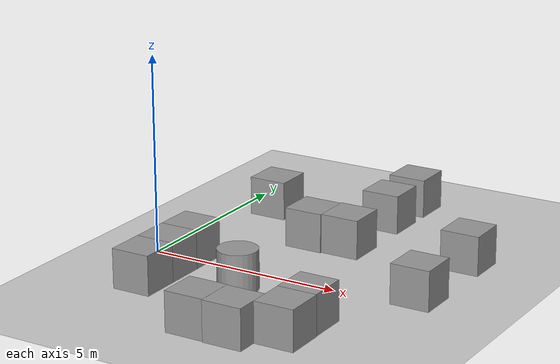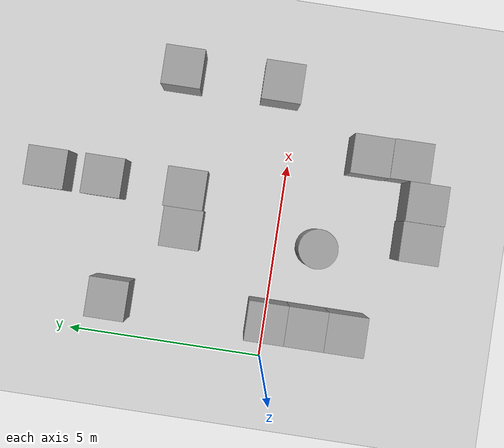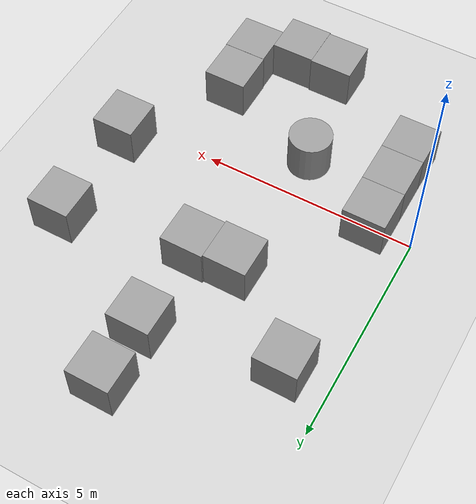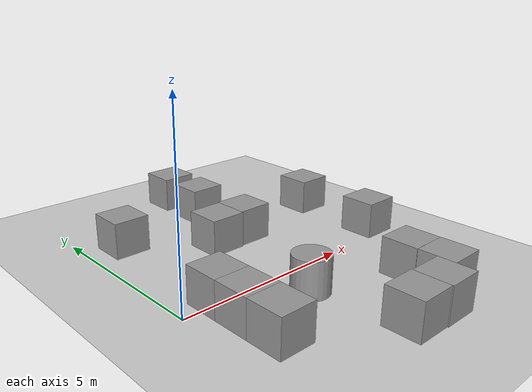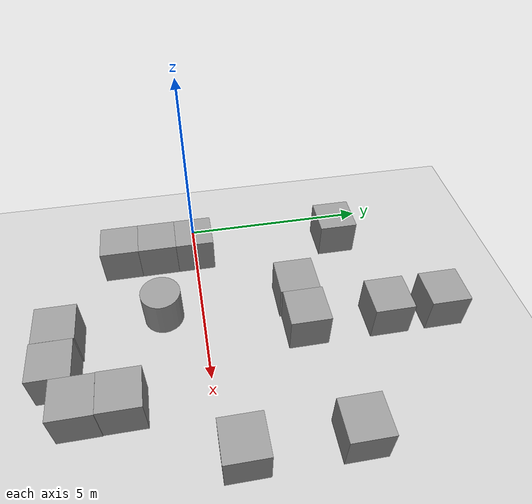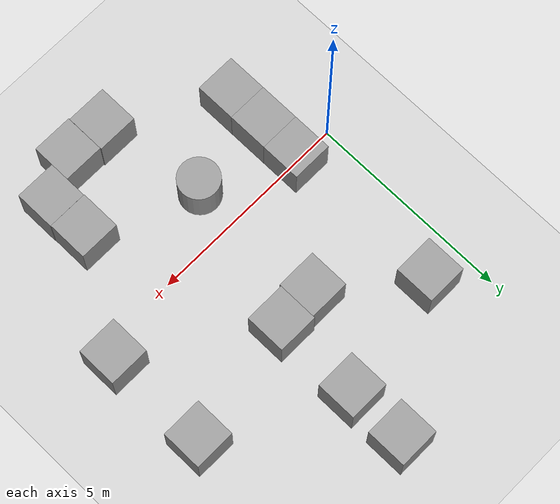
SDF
<sdf version="1.4">
 <world name="default">
  <light name="sun" type="directional">
   <pose>0 0 10 0 -0 0</pose>
   <diffuse>0.8 0.8 0.8 1</diffuse>
   <specular>0.2 0.2 0.2 1</specular>
   <attenuation>
    <range>1000</range>
    <constant>0.9</constant>
    <linear>0.01</linear>
    <quadratic>0.001</quadratic>
   </attenuation>
   <direction>-0.5 0.1 -0.9</direction>
  </light>
  <model name="ground_plane">
   <static>1</static>
   <link name="link">
    <collision name="collision">
     <geometry><plane><normal>0 0 1</normal><size>100 100</size></plane></geometry>
     <surface><friction><ode><mu>100</mu><mu2>50</mu2></ode></friction></surface>
    </collision>
    <visual name="visual">
     <cast_shadows>0</cast_shadows>
     <geometry><plane><normal>0 0 1</normal><size>100 100</size></plane></geometry>
     <material>
      <script><uri>file://media/materials/scripts/gazebo.material</uri><name>Gazebo/Grey</name></script>
     </material>
    </visual>
    <velocity_decay><linear>0</linear><angular>0</angular></velocity_decay>
   </link>
  </model>
  <physics type="ode">
   <max_step_size>0.001</max_step_size>
   <real_time_factor>1</real_time_factor>
   <real_time_update_rate>1000</real_time_update_rate>
   <gravity>0 0 -9.8</gravity>
  </physics>
  <scene><ambient>0.4 0.4 0.4 1</ambient><background>0.7 0.7 0.7 1</background><shadows>1</shadows></scene>
  <spherical_coordinates>
   <surface_model>EARTH_WGS84</surface_model>
   <latitude_deg>0</latitude_deg>
   <longitude_deg>0</longitude_deg>
   <elevation>0</elevation>
   <heading_deg>0</heading_deg>
  </spherical_coordinates>
  <model name="unit_box_1">
   <pose>1 -1 0.5 0 -0 -2e-06</pose>
   <link name="link">
    <inertial>
     <mass>1</mass>
     <inertia><ixx>1</ixx><ixy>0</ixy><ixz>0</ixz><iyy>1</iyy><iyz>0</iyz><izz>1</izz></inertia>
    </inertial>
    <collision name="collision"><geometry><box><size>1 1 1</size></box></geometry></collision>
    <visual name="visual">
     <geometry><box><size>1 1 1</size></box></geometry>
     <material>
      <script><uri>file://media/materials/scripts/gazebo.material</uri><name>Gazebo/Grey</name></script>
     </material>
    </visual>
    <velocity_decay><linear>0</linear><angular>0</angular></velocity_decay>
   </link>
   <static>0</static>
  </model>
  <model name="unit_box_2">
   <pose>1 -2 0.5 -0 -0 -0</pose>
   <link name="link">
    <inertial>
     <mass>1</mass>
     <inertia><ixx>1</ixx><ixy>0</ixy><ixz>0</ixz><iyy>1</iyy><iyz>0</iyz><izz>1</izz></inertia>
    </inertial>
    <collision name="collision"><geometry><box><size>1 1 1</size></box></geometry></collision>
    <visual name="visual">
     <geometry><box><size>1 1 1</size></box></geometry>
     <material>
      <script><uri>file://media/materials/scripts/gazebo.material</uri><name>Gazebo/Grey</name></script>
     </material>
    </visual>
    <velocity_decay><linear>0</linear><angular>0</angular></velocity_decay>
   </link>
   <static>0</static>
  </model>
  <model name="unit_box_3">
   <pose>3.51342 -3.49772 0.5 0 -0 0.000892</pose>
   <link name="link">
    <inertial>
     <mass>1</mass>
     <inertia><ixx>1</ixx><ixy>0</ixy><ixz>0</ixz><iyy>1</iyy><iyz>0</iyz><izz>1</izz></inertia>
    </inertial>
    <collision name="collision"><geometry><box><size>1 1 1</size></box></geometry></collision>
    <visual name="visual">
     <geometry><box><size>1 1 1</size></box></geometry>
     <material>
      <script><uri>file://media/materials/scripts/gazebo.material</uri><name>Gazebo/Grey</name></script>
     </material>
    </visual>
    <velocity_decay><linear>0</linear><angular>0</angular></velocity_decay>
   </link>
   <static>0</static>
  </model>
  <model name="unit_cylinder_2">
   <pose>3 -1 0.499998 1e-06 -0 0</pose>
   <link name="link">
    <inertial>
     <mass>1</mass>
     <inertia><ixx>1</ixx><ixy>0</ixy><ixz>0</ixz><iyy>1</iyy><iyz>0</iyz><izz>1</izz></inertia>
    </inertial>
    <collision name="collision">
     <geometry><cylinder><radius>0.5</radius><length>1</length></cylinder></geometry>
    </collision>
    <visual name="visual">
     <geometry><cylinder><radius>0.5</radius><length>1</length></cylinder></geometry>
     <material>
      <script><uri>file://media/materials/scripts/gazebo.material</uri><name>Gazebo/Grey</name></script>
     </material>
    </visual>
    <velocity_decay><linear>0</linear><angular>0</angular></velocity_decay>
   </link>
   <static>0</static>
  </model>
  <model name="unit_box_4">
   <pose>4.51429 -3.52273 0.5 0 -0 0.002583</pose>
   <link name="link">
    <inertial>
     <mass>1</mass>
     <inertia><ixx>1</ixx><ixy>0</ixy><ixz>0</ixz><iyy>1</iyy><iyz>0</iyz><izz>1</izz></inertia>
    </inertial>
    <collision name="collision"><geometry><box><size>1 1 1</size></box></geometry></collision>
    <visual name="visual">
     <geometry><box><size>1 1 1</size></box></geometry>
     <material>
      <script><uri>file://media/materials/scripts/gazebo.material</uri><name>Gazebo/Grey</name></script>
     </material>
    </visual>
    <velocity_decay><linear>0</linear><angular>0</angular></velocity_decay>
   </link>
   <static>0</static>
  </model>
  <model name="unit_box_5">
   <pose>5.51299 -2.99965 0.5 0 -0 0.002485</pose>
   <link name="link">
    <inertial>
     <mass>1</mass>
     <inertia><ixx>1</ixx><ixy>0</ixy><ixz>0</ixz><iyy>1</iyy><iyz>0</iyz><izz>1</izz></inertia>
    </inertial>
    <collision name="collision"><geometry><box><size>1 1 1</size></box></geometry></collision>
    <visual name="visual">
     <geometry><box><size>1 1 1</size></box></geometry>
     <material>
      <script><uri>file://media/materials/scripts/gazebo.material</uri><name>Gazebo/Grey</name></script>
     </material>
    </visual>
    <velocity_decay><linear>0</linear><angular>0</angular></velocity_decay>
   </link>
   <static>0</static>
  </model>
  <model name="unit_box_6">
   <pose>5.49986 -1.99875 0.5 0 -0 0.000619</pose>
   <link name="link">
    <inertial>
     <mass>1</mass>
     <inertia><ixx>1</ixx><ixy>0</ixy><ixz>0</ixz><iyy>1</iyy><iyz>0</iyz><izz>1</izz></inertia>
    </inertial>
    <collision name="collision"><geometry><box><size>1 1 1</size></box></geometry></collision>
    <visual name="visual">
     <geometry><box><size>1 1 1</size></box></geometry>
     <material>
      <script><uri>file://media/materials/scripts/gazebo.material</uri><name>Gazebo/Grey</name></script>
     </material>
    </visual>
    <velocity_decay><linear>0</linear><angular>0</angular></velocity_decay>
   </link>
   <static>0</static>
  </model>
  <model name="unit_box_7">
   <pose>7 0.460649 0.5 0 -0 0</pose>
   <link name="link">
    <inertial>
     <mass>1</mass>
     <inertia><ixx>1</ixx><ixy>0</ixy><ixz>0</ixz><iyy>1</iyy><iyz>0</iyz><izz>1</izz></inertia>
    </inertial>
    <collision name="collision"><geometry><box><size>1 1 1</size></box></geometry></collision>
    <visual name="visual">
     <geometry><box><size>1 1 1</size></box></geometry>
     <material>
      <script><uri>file://media/materials/scripts/gazebo.material</uri><name>Gazebo/Grey</name></script>
     </material>
    </visual>
    <velocity_decay><linear>0</linear><angular>0</angular></velocity_decay>
   </link>
   <static>0</static>
  </model>
  <model name="unit_box_8">
   <pose>1 0 0.5 0 -0 -2e-06</pose>
   <link name="link">
    <inertial>
     <mass>1</mass>
     <inertia><ixx>1</ixx><ixy>0</ixy><ixz>0</ixz><iyy>1</iyy><iyz>0</iyz><izz>1</izz></inertia>
    </inertial>
    <collision name="collision"><geometry><box><size>1 1 1</size></box></geometry></collision>
    <visual name="visual">
     <geometry><box><size>1 1 1</size></box></geometry>
     <material>
      <script><uri>file://media/materials/scripts/gazebo.material</uri><name>Gazebo/Grey</name></script>
     </material>
    </visual>
    <velocity_decay><linear>0</linear><angular>0</angular></velocity_decay>
   </link>
   <static>0</static>
  </model>
  <model name="unit_box_9">
   <pose>4 2.48737 0.5 0 -0 0</pose>
   <link name="link">
    <inertial>
     <mass>1</mass>
     <inertia><ixx>1</ixx><ixy>0</ixy><ixz>0</ixz><iyy>1</iyy><iyz>0</iyz><izz>1</izz></inertia>
    </inertial>
    <collision name="collision"><geometry><box><size>1 1 1</size></box></geometry></collision>
    <visual name="visual">
     <geometry><box><size>1 1 1</size></box></geometry>
     <material>
      <script><uri>file://media/materials/scripts/gazebo.material</uri><name>Gazebo/Grey</name></script>
     </material>
    </visual>
    <velocity_decay><linear>0</linear><angular>0</angular></velocity_decay>
   </link>
   <static>0</static>
  </model>
  <model name="unit_box_10">
   <pose>3 2.44308 0.5 -0 -0 -0</pose>
   <link name="link">
    <inertial>
     <mass>1</mass>
     <inertia><ixx>1</ixx><ixy>0</ixy><ixz>0</ixz><iyy>1</iyy><iyz>0</iyz><izz>1</izz></inertia>
    </inertial>
    <collision name="collision"><geometry><box><size>1 1 1</size></box></geometry></collision>
    <visual name="visual">
     <geometry><box><size>1 1 1</size></box></geometry>
     <material>
      <script><uri>file://media/materials/scripts/gazebo.material</uri><name>Gazebo/Grey</name></script>
     </material>
    </visual>
    <velocity_decay><linear>0</linear><angular>0</angular></velocity_decay>
   </link>
   <static>0</static>
  </model>
  <model name="unit_box_11">
   <pose>7 3 0.5 0 -0 0</pose>
   <link name="link">
    <inertial>
     <mass>1</mass>
     <inertia><ixx>1</ixx><ixy>0</ixy><ixz>0</ixz><iyy>1</iyy><iyz>0</iyz><izz>1</izz></inertia>
    </inertial>
    <collision name="collision"><geometry><box><size>1 1 1</size></box></geometry></collision>
    <visual name="visual">
     <geometry><box><size>1 1 1</size></box></geometry>
     <material>
      <script><uri>file://media/materials/scripts/gazebo.material</uri><name>Gazebo/Grey</name></script>
     </material>
    </visual>
    <velocity_decay><linear>0</linear><angular>0</angular></velocity_decay>
   </link>
   <static>0</static>
  </model>
  <model name="unit_box_12">
   <pose>4 6 0.5 0 -0 0</pose>
   <link name="link">
    <inertial>
     <mass>1</mass>
     <inertia><ixx>1</ixx><ixy>0</ixy><ixz>0</ixz><iyy>1</iyy><iyz>0</iyz><izz>1</izz></inertia>
    </inertial>
    <collision name="collision"><geometry><box><size>1 1 1</size></box></geometry></collision>
    <visual name="visual">
     <geometry><box><size>1 1 1</size></box></geometry>
     <material>
      <script><uri>file://media/materials/scripts/gazebo.material</uri><name>Gazebo/Grey</name></script>
     </material>
    </visual>
    <velocity_decay><linear>0</linear><angular>0</angular></velocity_decay>
   </link>
   <static>0</static>
  </model>
  <model name="unit_box_13">
   <pose>1 4 0.5 0 -0 0</pose>
   <link name="link">
    <inertial>
     <mass>1</mass>
     <inertia><ixx>1</ixx><ixy>0</ixy><ixz>0</ixz><iyy>1</iyy><iyz>0</iyz><izz>1</izz></inertia>
    </inertial>
    <collision name="collision"><geometry><box><size>1 1 1</size></box></geometry></collision>
    <visual name="visual">
     <geometry><box><size>1 1 1</size></box></geometry>
     <material>
      <script><uri>file://media/materials/scripts/gazebo.material</uri><name>Gazebo/Grey</name></script>
     </material>
    </visual>
    <velocity_decay><linear>0</linear><angular>0</angular></velocity_decay>
   </link>
   <static>0</static>
  </model>
  <model name="unit_box_14">
   <pose>4 4.5666 0.5 0 -0 0</pose>
   <link name="link">
    <inertial>
     <mass>1</mass>
     <inertia><ixx>1</ixx><ixy>0</ixy><ixz>0</ixz><iyy>1</iyy><iyz>0</iyz><izz>1</izz></inertia>
    </inertial>
    <collision name="collision"><geometry><box><size>1 1 1</size></box></geometry></collision>
    <visual name="visual">
     <geometry><box><size>1 1 1</size></box></geometry>
     <material>
      <script><uri>file://media/materials/scripts/gazebo.material</uri><name>Gazebo/Grey</name></script>
     </material>
    </visual>
    <velocity_decay><linear>0</linear><angular>0</angular></velocity_decay>
   </link>
   <static>0</static>
  </model>
 </world>
</sdf>
